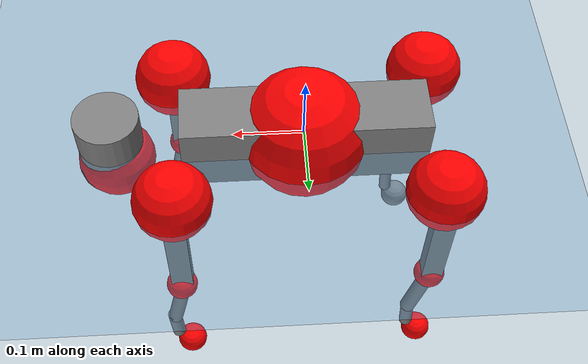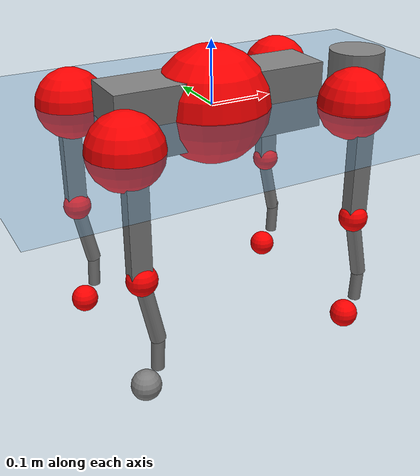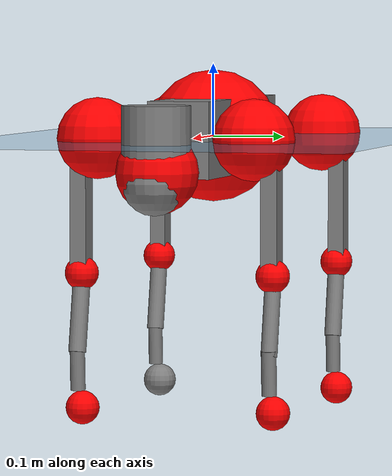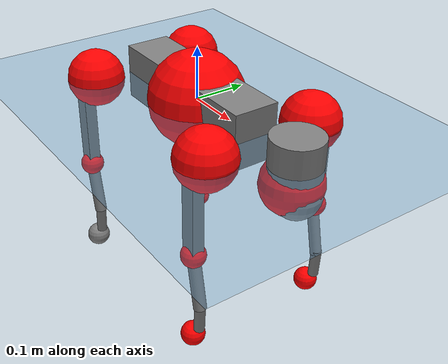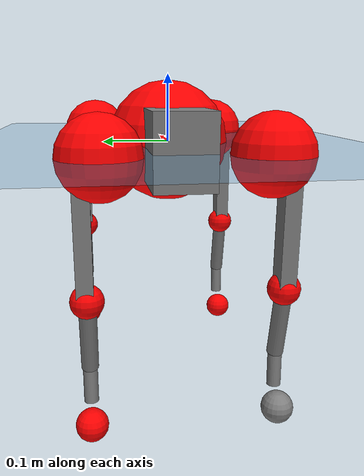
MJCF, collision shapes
<mujoco model="go2">
  <compiler angle="radian" assetdir="assets" balanceinertia="true" inertiafromgeom="false"/>

  <option timestep="0.005" density="1.2" viscosity="2e-05"/>

  <size nkey="1"/>

  <visual>
    <quality shadowsize="8192"/>
    <map shadowclip="0.5"/>
  </visual>

  <default>
    <default class="/">
      <geom contype="0" conaffinity="0" group="1" solref="-1000 -80"/>
      <site size="0.01 0.005 0.005" group="5"/>
      <general forcelimited="true" biastype="affine" gainprm="20" biasprm="0 -20 -0.5"/>
      <default class="go2">
        <joint armature="0.01" damping="0.01" frictionloss="0.2"/>
        <geom condim="1" margin="0.001"/>
        <default class="visual">
          <geom type="mesh" group="2"/>
        </default>
        <default class="collision">
          <geom group="3"/>
          <default class="foot">
            <geom size="0.022 0 0" condim="6" priority="1" friction="0.8 0.02 0.01" solimp="0.015 1 0.022"/>
          </default>
        </default>
        <default class="reward_collision_sphere">
          <geom group="5" rgba="1 0 0 1"/>
        </default>
      </default>
    </default>
  </default>

  <asset>
    <texture type="skybox" colorspace="auto" name="//unnamed_texture_0" builtin="gradient" rgb1="0.95 0.95 0.95" rgb2="0.95 0.95 0.95" width="100" height="600"/>
    <texture type="2d" colorspace="auto" name="texplane" builtin="checker" rgb1="0.345 0.575 0.748" rgb2="0.345 0.575 0.748" markrgb="1 1 1" width="512" height="512"/>
    <material name="MatPlane" class="/" texture="texplane" texuniform="true" texrepeat="2 2" specular="0.9"/>
    <material name="metal" class="/" rgba="0.9 0.95 0.95 1"/>
    <material name="black" class="/" rgba="0 0 0 1"/>
    <material name="white" class="/"/>
    <material name="gray" class="/" rgba="0.671705 0.692426 0.77427 1"/>
    <mesh name="base_0" class="/" file="base_0.obj"/>
    <mesh name="base_1" class="/" file="base_1.obj"/>
    <mesh name="base_2" class="/" file="base_2.obj"/>
    <mesh name="base_3" class="/" file="base_3.obj"/>
    <mesh name="base_4" class="/" file="base_4.obj"/>
    <mesh name="hip_0" class="/" file="hip_0.obj"/>
    <mesh name="hip_1" class="/" file="hip_1.obj"/>
    <mesh name="thigh_0" class="/" file="thigh_0.obj"/>
    <mesh name="thigh_1" class="/" file="thigh_1.obj"/>
    <mesh name="thigh_mirror_0" class="/" file="thigh_mirror_0.obj"/>
    <mesh name="thigh_mirror_1" class="/" file="thigh_mirror_1.obj"/>
    <mesh name="calf_0" class="/" file="calf_0.obj"/>
    <mesh name="calf_1" class="/" file="calf_1.obj"/>
    <mesh name="calf_mirror_0" class="/" file="calf_mirror_0.obj"/>
    <mesh name="calf_mirror_1" class="/" file="calf_mirror_1.obj"/>
    <mesh name="foot" class="/" file="foot.obj"/>
  </asset>

  <worldbody>
    <geom name="floor" class="/" size="100 100 0.125" type="plane" group="0" material="MatPlane"/>
    <light name="toplight_shadow" class="/" pos="0 0 5" dir="0.0990148 0.0990148 -0.990148" type="directional" ambient="0.04 0.04 0.04" diffuse="0.55 0.55 0.55" specular="0.12 0.12 0.12"/>
    <light name="toplight_fill" class="/" pos="0 0 5" dir="0.0990148 0.0990148 -0.990148" type="directional" castshadow="false" ambient="0.04 0.04 0.04" diffuse="0.3 0.3 0.3" specular="0.08 0.08 0.08"/>
    <body name="trunk" childclass="go2" pos="-0.000355191 0.000385809 0.000764768" quat="1 4.2986e-06 6.22052e-05 -2.73268e-05">
      <inertial pos="0.0207311 -0.000589863 -0.00426482" quat="-0.00525324 0.713136 7.26683e-05 0.701006" mass="5.2779" diaginertia="0.0866249 0.0702348 0.0117762"/>
      <joint name="//unnamed_joint_0" type="free" armature="0" damping="0" frictionloss="0"/>
      <geom name="//unnamed_geom_1" class="visual" material="black" mesh="base_0"/>
      <geom name="//unnamed_geom_2" class="visual" material="black" mesh="base_1"/>
      <geom name="//unnamed_geom_3" class="visual" material="black" mesh="base_2"/>
      <geom name="//unnamed_geom_4" class="visual" material="white" mesh="base_3"/>
      <geom name="//unnamed_geom_5" class="visual" material="gray" mesh="base_4"/>
      <geom name="trunk_1" class="collision" size="0.172383 0.0428437 0.0522372" type="box"/>
      <geom name="trunk_2" class="collision" size="0.0458221 0.0412399" pos="0.271982 0 0.00859938" type="cylinder"/>
      <geom name="trunk_3" class="collision" size="0.0430728" pos="0.279616 0 -0.0515963"/>
      <geom name="//unnamed_geom_9" class="reward_collision_sphere" size="0.0916442"/>
      <geom name="//unnamed_geom_10" class="reward_collision_sphere" size="0.0549865" pos="0.26721 0 -0.0386972"/>
      <site name="imu" pos="-0.0271647 -0.0113905 0.0413772" size="0.00916442"/>
      <camera name="track" pos="0 -1.87013 0" quat="0.707107 0.707107 0 0" mode="trackcom"/>
      <camera name="ego_camera" pos="0.297748 0 0.0386972" quat="-0.5 -0.5 0.5 0.5"/>
      <body name="FL_hip" pos="0.184273 0.0433358 0.00223778" quat="0.999999 0.000625723 -0.000575756 -0.000745092">
        <inertial pos="-0.00433273 0.00250114 0.000436822" quat="0.498149 0.500424 0.504492 0.496902" mass="0.53375" diaginertia="0.00071505 0.000436991 0.000228809"/>
        <joint name="FL_hip_joint" pos="0 0 0" axis="0.999984 0.00328022 0.00454447" range="-1.01341 1.04489" armature="0.00946219" damping="0.0065149" frictionloss="0.180441"/>
        <geom name="//unnamed_geom_11" class="visual" material="metal" mesh="hip_0"/>
        <geom name="//unnamed_geom_12" class="visual" material="gray" mesh="hip_1"/>
        <geom name="//unnamed_geom_13" class="collision" size="0.0421563 0.0183288" pos="0 0.0748053 0" quat="0.707107 0.707107 0 0" type="cylinder"/>
        <geom name="//unnamed_geom_14" class="reward_collision_sphere" size="0.0549865" pos="0 0.0654546 0"/>
        <body name="FL_thigh" pos="-4.4434e-05 0.0896964 0.00215283" quat="1 8.90701e-05 -3.04152e-05 -1.83332e-05">
          <inertial pos="-0.00344432 -0.0225047 -0.0303032" quat="0.830382 0.081361 -0.0186767 0.550906" mass="0.887008" diaginertia="0.00472701 0.00421417 0.000413858"/>
          <joint name="FL_thigh_joint" pos="0 0 0" axis="0.00123167 0.999998 0.00164019" range="-1.56698 3.536" armature="0.00945221" damping="0" frictionloss="0.182642"/>
          <geom name="//unnamed_geom_15" class="visual" material="metal" mesh="thigh_0"/>
          <geom name="//unnamed_geom_16" class="visual" material="gray" mesh="thigh_1"/>
          <geom name="//unnamed_geom_17" class="collision" size="0.0976011 0.0112264 0.0155795" pos="0 0 -0.0915834" quat="0.707107 0 0.707107 0" type="box"/>
          <body name="FL_calf" pos="0.0016716 0.00184345 -0.182916" quat="1 -1.64345e-05 -2.28584e-05 -1.01734e-06">
            <inertial pos="0.00698864 0.000284839 -0.120896" quat="0.710494 0.00136117 -0.00486517 0.703686" mass="0.189045" diaginertia="0.00117757 0.00104652 2.49014e-05"/>
            <joint name="FL_calf_joint" pos="0 0 0" axis="7.39705e-05 0.999997 0.00241782" range="-2.72429 -0.864757" armature="0.00907887" damping="0.00304081" frictionloss="0.178775"/>
            <geom name="//unnamed_geom_18" class="visual" material="gray" mesh="calf_0"/>
            <geom name="//unnamed_geom_19" class="visual" material="black" mesh="calf_1"/>
            <geom name="FL_calf0" class="collision" size="0.0109973 0.0549865" pos="0.00763457 0 -0.0515963" quat="0.994493 0 -0.104807 0" type="cylinder"/>
            <geom name="//unnamed_geom_21" class="collision" size="0.0100809 0.0297844" pos="0.0190864 0 -0.127271" quat="0.999688 0 0.0249974 0" type="cylinder"/>
            <geom name="//unnamed_geom_22" class="visual" pos="0 0 -0.183167" quat="1 0 0 0" material="black" mesh="foot"/>
            <geom name="FL_foot" class="foot" size="0.0168506" pos="-0.00190864 0 -0.183167"/>
            <geom name="//unnamed_geom_24" class="reward_collision_sphere" size="0.022911"/>
            <geom name="//unnamed_geom_25" class="reward_collision_sphere" size="0.022911" pos="-0.00190864 0 -0.183167"/>
            <site name="FL_foot" class="foot" pos="-0.00190864 0 -0.183167" size="0.00916442"/>
          </body>
        </body>
      </body>
      <body name="FR_hip" pos="0.184535 -0.0434199 0.00242419" quat="1 -7.90951e-05 5.76571e-05 6.12841e-05">
        <inertial pos="-0.00436909 -0.00182057 -0.000228158" quat="0.492126 0.505566 0.498617 0.503582" mass="0.533365" diaginertia="0.000723016 0.00043096 0.000231338"/>
        <joint name="FR_hip_joint" pos="0 0 0" axis="1 0.000282586 -0.000740074" stiffness="0.00484817" range="-1.03816 1.0561" armature="0.00915507" damping="0.0109375" frictionloss="0.174652"/>
        <geom name="//unnamed_geom_26" class="visual" pos="0 6.54485e-10 2.80722e-08" quat="4.63268e-05 1 0 0" material="metal" mesh="hip_0"/>
        <geom name="//unnamed_geom_27" class="visual" pos="0 1.061e-09 -6.94333e-08" quat="4.63268e-05 1 0 0" material="gray" mesh="hip_1"/>
        <geom name="//unnamed_geom_28" class="collision" size="0.0421563 0.0183288" pos="0 -0.0748053 0" quat="0.707107 0.707107 0 0" type="cylinder"/>
        <geom name="//unnamed_geom_29" class="reward_collision_sphere" size="0.0549865" pos="0 -0.0654546 0"/>
        <body name="FR_thigh" pos="-0.000349055 -0.0893334 -0.000121229" quat="1 -0.000108751 -0.000297798 -0.000326823">
          <inertial pos="-0.00370218 0.021063 -0.0299875" quat="0.552723 -0.0213667 0.0960731 0.827533" mass="0.89804" diaginertia="0.00486296 0.0042767 0.000423102"/>
          <joint name="FR_thigh_joint" pos="0 0 0" axis="0.00119167 -0.999995 0.00280973" range="-3.52942 1.58707" armature="0.00877431" damping="0.0141652" frictionloss="0.180203"/>
          <geom name="//unnamed_geom_30" class="visual" material="metal" mesh="thigh_mirror_0"/>
          <geom name="//unnamed_geom_31" class="visual" material="gray" mesh="thigh_mirror_1"/>
          <geom name="//unnamed_geom_32" class="collision" size="0.0976011 0.0112264 0.0155795" pos="0 0 -0.0915834" quat="0.707107 0 0.707107 0" type="box"/>
          <body name="FR_calf" pos="-0.000254749 0.00060599 -0.182304" quat="1 -6.97911e-06 8.03407e-06 -7.52123e-06">
            <inertial pos="0.00583374 0.000264477 -0.119489" quat="0.705273 -0.00617284 0.00215741 0.708905" mass="0.178635" diaginertia="0.00113073 0.00104418 2.37547e-05"/>
            <joint name="FR_calf_joint" pos="0 0 0" axis="-0.00551185 -0.999973 -0.0049304" range="0.83045 2.73761" armature="0.00939853" damping="0.0103873" frictionloss="0.183387"/>
            <geom name="//unnamed_geom_33" class="visual" material="gray" mesh="calf_mirror_0"/>
            <geom name="//unnamed_geom_34" class="visual" material="black" mesh="calf_mirror_1"/>
            <geom name="FR_calf0" class="collision" size="0.0119137 0.0549865" pos="0.00954321 0 -0.0515963" quat="0.995004 0 -0.0998334 0" type="cylinder"/>
            <geom name="//unnamed_geom_36" class="collision" size="0.0100809 0.0297844" pos="0.0190864 0 -0.127271" quat="0.999688 0 0.0249974 0" type="cylinder"/>
            <geom name="//unnamed_geom_37" class="visual" pos="0 0 -0.183167" quat="1 0 0 0" material="black" mesh="foot"/>
            <geom name="FR_foot" class="foot" size="0.0221087" pos="-0.00190864 0 -0.183167"/>
            <geom name="//unnamed_geom_39" class="reward_collision_sphere" size="0.022911"/>
            <geom name="//unnamed_geom_40" class="reward_collision_sphere" size="0.022911" pos="-0.00190864 0 -0.183167"/>
            <site name="FR_foot" class="foot" pos="-0.00190864 0 -0.183167" size="0.00916442"/>
          </body>
        </body>
      </body>
      <body name="RL_hip" pos="-0.184255 0.044178 -0.00179148" quat="1 3.08618e-05 -0.000142097 4.14165e-05">
        <inertial pos="0.00499508 0.00174213 -0.00191986" quat="0.503641 0.499399 0.497122 0.499816" mass="0.52958" diaginertia="0.000707261 0.000422888 0.000225587"/>
        <joint name="RL_hip_joint" pos="0 0 0" axis="-0.999857 -0.00301307 0.0166323" range="-1.00399 1.07855" armature="0.00910867" damping="0.00173765" frictionloss="0.198342"/>
        <geom name="//unnamed_geom_41" class="visual" pos="-8.22228e-10 0 -1.61176e-07" quat="4.63268e-05 0 1 0" material="metal" mesh="hip_0"/>
        <geom name="//unnamed_geom_42" class="visual" pos="-1.33293e-09 0 -1.4294e-07" quat="4.63268e-05 0 1 0" material="gray" mesh="hip_1"/>
        <geom name="//unnamed_geom_43" class="collision" size="0.0421563 0.0183288" pos="0 0.0748053 0" quat="0.707107 0.707107 0 0" type="cylinder"/>
        <geom name="//unnamed_geom_44" class="reward_collision_sphere" size="0.0549865" pos="0 0.0654546 0"/>
        <body name="RL_thigh" pos="0.000326271 0.0894488 -0.00163621" quat="1 -3.95644e-05 -1.10435e-06 1.97013e-06">
          <inertial pos="-0.00498669 -0.0200619 -0.0304577" quat="0.831361 0.0774851 -0.0220665 0.549862" mass="0.874945" diaginertia="0.00453989 0.00411197 0.000399348"/>
          <joint name="RL_thigh_joint" pos="0 0 0" axis="-0.00712514 0.99997 -0.00318882" stiffness="0.00306662" range="-0.555952 4.54603" armature="0.00872175" damping="0.00874338" frictionloss="0.186057"/>
          <geom name="//unnamed_geom_45" class="visual" material="metal" mesh="thigh_0"/>
          <geom name="//unnamed_geom_46" class="visual" material="gray" mesh="thigh_1"/>
          <geom name="//unnamed_geom_47" class="collision" size="0.0976011 0.0112264 0.0155795" pos="0 0 -0.0915834" quat="0.707107 0 0.707107 0" type="box"/>
          <body name="RL_calf" pos="0.000492641 -0.00222475 -0.18416" quat="1 7.68544e-05 -2.36348e-05 2.39642e-05">
            <inertial pos="0.00542574 -0.000108778 -0.121522" quat="0.70914 -0.000135293 -0.00837844 0.705018" mass="0.184858" diaginertia="0.00117955 0.0010354 2.53522e-05"/>
            <joint name="RL_calf_joint" pos="0 0 0" axis="0.000380872 0.999945 0.0104511" range="-2.73973 -0.837252" armature="0.00948362" damping="0.000146241" frictionloss="0.179762"/>
            <geom name="//unnamed_geom_48" class="visual" material="gray" mesh="calf_0"/>
            <geom name="//unnamed_geom_49" class="visual" material="black" mesh="calf_1"/>
            <geom name="RL_calf0" class="collision" size="0.0119137 0.0549865" pos="0.00954321 0 -0.0515963" quat="0.995004 0 -0.0998334 0" type="cylinder"/>
            <geom name="//unnamed_geom_51" class="collision" size="0.0100809 0.0297844" pos="0.0190864 0 -0.127271" quat="0.999688 0 0.0249974 0" type="cylinder"/>
            <geom name="//unnamed_geom_52" class="visual" pos="0 0 -0.183167" quat="1 0 0 0" material="black" mesh="foot"/>
            <geom name="RL_foot" class="foot" size="0.0181522" pos="-0.00190864 0 -0.183167"/>
            <geom name="//unnamed_geom_54" class="reward_collision_sphere" size="0.022911"/>
            <geom name="//unnamed_geom_55" class="reward_collision_sphere" size="0.022911" pos="-0.00190864 0 -0.183167"/>
            <site name="RL_foot" class="foot" pos="-0.00190864 0 -0.183167" size="0.00916442"/>
          </body>
        </body>
      </body>
      <body name="RR_hip" pos="-0.184704 -0.0437436 -0.00140151" quat="1 0.000108802 -0.000284456 0.000304941">
        <inertial pos="0.00483763 -0.000300419 -0.000446797" quat="0.499244 0.497018 0.498238 0.505458" mass="0.5017" diaginertia="0.000679477 0.00041481 0.000219603"/>
        <joint name="RR_hip_joint" pos="0 0 0" axis="-0.999996 0.00292912 0.000551868" range="-1.06677 1.02833" armature="0.00944356" damping="0" frictionloss="0.174198"/>
        <geom name="//unnamed_geom_56" class="visual" pos="8.21561e-10 6.54485e-10 -1.89248e-07" quat="2.14617e-09 4.63268e-05 4.63268e-05 -1" material="metal" mesh="hip_0"/>
        <geom name="//unnamed_geom_57" class="visual" pos="1.33458e-09 1.061e-09 -7.35065e-08" quat="2.14617e-09 4.63268e-05 4.63268e-05 -1" material="gray" mesh="hip_1"/>
        <geom name="//unnamed_geom_58" class="collision" size="0.0421563 0.0183288" pos="0 -0.0748053 0" quat="0.707107 0.707107 0 0" type="cylinder"/>
        <geom name="//unnamed_geom_59" class="reward_collision_sphere" size="0.0549865" pos="0 -0.0654546 0"/>
        <body name="RR_thigh" pos="3.80147e-05 -0.0903521 0.000789222" quat="1 -0.000189224 2.56095e-07 0.000188018">
          <inertial pos="-0.00321959 0.0214094 -0.0281487" quat="0.552035 -0.0197301 0.0850773 0.829235" mass="0.863101" diaginertia="0.00459161 0.0040911 0.000412747"/>
          <joint name="RR_thigh_joint" pos="0 0 0" axis="-0.00514351 -0.999942 0.00950709" range="-4.57581 0.556459" armature="0.0090778" damping="0.0105915" frictionloss="0.17285"/>
          <geom name="//unnamed_geom_60" class="visual" material="metal" mesh="thigh_mirror_0"/>
          <geom name="//unnamed_geom_61" class="visual" material="gray" mesh="thigh_mirror_1"/>
          <geom name="//unnamed_geom_62" class="collision" size="0.0976011 0.0112264 0.0155795" pos="0 0 -0.0915834" quat="0.707107 0 0.707107 0" type="box"/>
          <body name="RR_calf" pos="0.00279452 -0.000921362 -0.183868" quat="1 -1.74339e-05 7.25332e-06 8.86135e-06">
            <inertial pos="0.00482752 0.000634425 -0.121814" quat="0.702481 -0.00424601 0.000980042 0.711689" mass="0.184167" diaginertia="0.00118163 0.00103869 2.50669e-05"/>
            <joint name="RR_calf_joint" pos="0 0 0" axis="0.000303265 -0.999982 -0.00607067" range="0.841117 2.71713" armature="0.00954512" damping="0.00311313" frictionloss="0.186266"/>
            <geom name="//unnamed_geom_63" class="visual" material="gray" mesh="calf_mirror_0"/>
            <geom name="//unnamed_geom_64" class="visual" material="black" mesh="calf_mirror_1"/>
            <geom name="RR_calf0" class="collision" size="0.0119137 0.0549865" pos="0.00954321 0 -0.0515963" quat="0.995004 0 -0.0998334 0" type="cylinder"/>
            <geom name="//unnamed_geom_66" class="collision" size="0.0100809 0.0297844" pos="0.0190864 0 -0.127271" quat="0.999688 0 0.0249974 0" type="cylinder"/>
            <geom name="//unnamed_geom_67" class="visual" pos="0 0 -0.183167" quat="1 0 0 0" material="black" mesh="foot"/>
            <geom name="RR_foot" class="foot" size="0.0232775" pos="-0.00190864 0 -0.183167"/>
            <geom name="//unnamed_geom_69" class="reward_collision_sphere" size="0.022911"/>
            <geom name="//unnamed_geom_70" class="reward_collision_sphere" size="0.022911" pos="-0.00190864 0 -0.183167"/>
            <site name="RR_foot" class="foot" pos="-0.00190864 0 -0.183167" size="0.00916442"/>
          </body>
        </body>
      </body>
    </body>
  </worldbody>

  <contact>
    <pair class="/" geom1="floor" geom2="FL_foot" name="//unnamed_contact_0"/>
    <pair class="/" geom1="floor" geom2="FR_foot" name="//unnamed_contact_1"/>
    <pair class="/" geom1="floor" geom2="RL_foot" name="//unnamed_contact_2"/>
    <pair class="/" geom1="floor" geom2="RR_foot" name="//unnamed_contact_3"/>
  </contact>

  <actuator>
    <general name="FL_hip" class="/" joint="FL_hip_joint" forcerange="-21.9547 21.9547" gainprm="18.7946" biasprm="0 -18.7946 -0.473563"/>
    <general name="FL_thigh" class="/" joint="FL_thigh_joint" forcerange="-22.8512 22.8512" gainprm="18.7946" biasprm="0 -18.7946 -0.473563"/>
    <general name="FL_calf" class="/" joint="FL_calf_joint" forcerange="-38.8743 38.8743" gainprm="18.7946" biasprm="0 -18.7946 -0.473563"/>
    <general name="FR_hip" class="/" joint="FR_hip_joint" forcerange="-22.1026 22.1026" gainprm="18.7946" biasprm="0 -18.7946 -0.473563"/>
    <general name="FR_thigh" class="/" joint="FR_thigh_joint" forcerange="-21.3622 21.3622" gainprm="18.7946" biasprm="0 -18.7946 -0.473563"/>
    <general name="FR_calf" class="/" joint="FR_calf_joint" forcerange="-44.9754 44.9754" gainprm="18.7946" biasprm="0 -18.7946 -0.473563"/>
    <general name="RL_hip" class="/" joint="RL_hip_joint" forcerange="-23.1852 23.1852" gainprm="18.7946" biasprm="0 -18.7946 -0.473563"/>
    <general name="RL_thigh" class="/" joint="RL_thigh_joint" forcerange="-21.1168 21.1168" gainprm="18.7946" biasprm="0 -18.7946 -0.473563"/>
    <general name="RL_calf" class="/" joint="RL_calf_joint" forcerange="-41.8687 41.8687" gainprm="18.7946" biasprm="0 -18.7946 -0.473563"/>
    <general name="RR_hip" class="/" joint="RR_hip_joint" forcerange="-21.704 21.704" gainprm="18.7946" biasprm="0 -18.7946 -0.473563"/>
    <general name="RR_thigh" class="/" joint="RR_thigh_joint" forcerange="-19.9132 19.9132" gainprm="18.7946" biasprm="0 -18.7946 -0.473563"/>
    <general name="RR_calf" class="/" joint="RR_calf_joint" forcerange="-40.2432 40.2432" gainprm="18.7946" biasprm="0 -18.7946 -0.473563"/>
  </actuator>

  <sensor>
    <gyro site="imu" name="imu_angular_velocity"/>
    <velocimeter site="imu" name="imu_linear_velocity"/>
    <framelinvel objtype="site" objname="FL_foot" name="FL_foot_global_linear_velocity"/>
    <framelinvel objtype="site" objname="FR_foot" name="FR_foot_global_linear_velocity"/>
    <framelinvel objtype="site" objname="RL_foot" name="RL_foot_global_linear_velocity"/>
    <framelinvel objtype="site" objname="RR_foot" name="RR_foot_global_linear_velocity"/>
  </sensor>

  <keyframe>
    <key name="home" qpos="0 0 0.325 1 0 0 0 0.1 0.8 -1.5 -0.1 -0.8 1.5 -0.1 0.8 -1.5 0.1 -0.8 1.5"/>
  </keyframe>
</mujoco>
